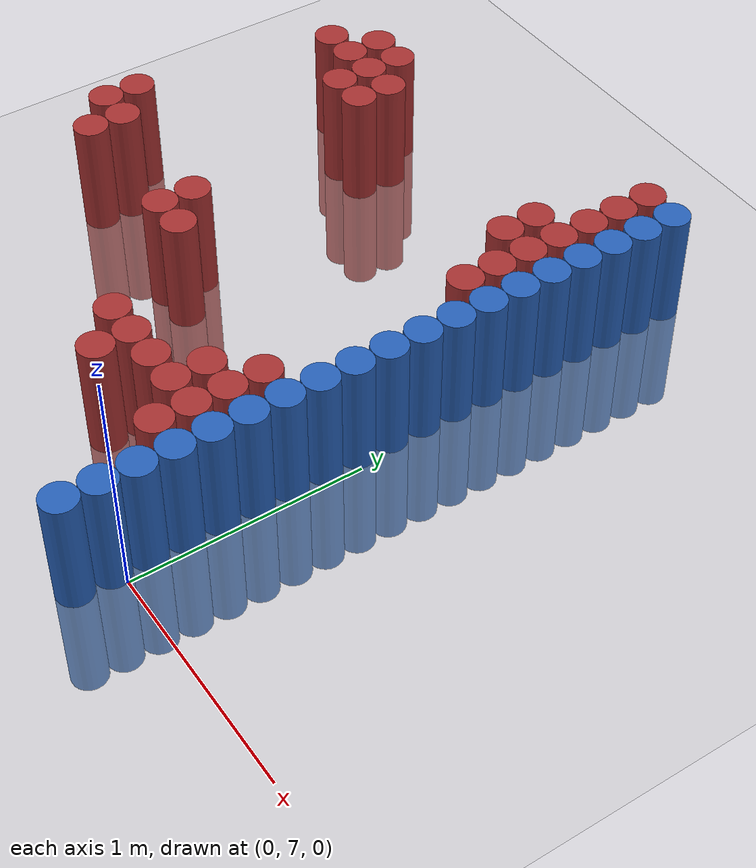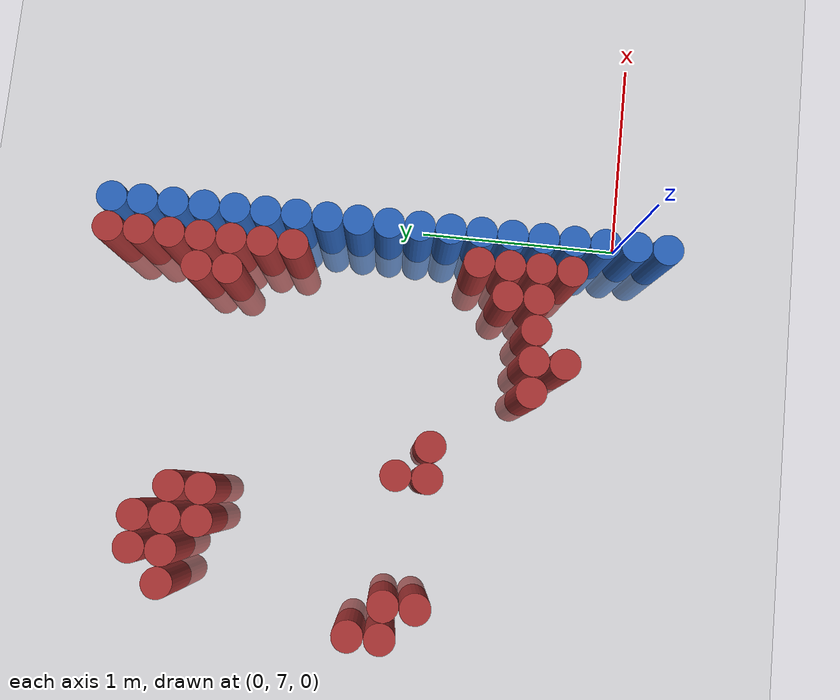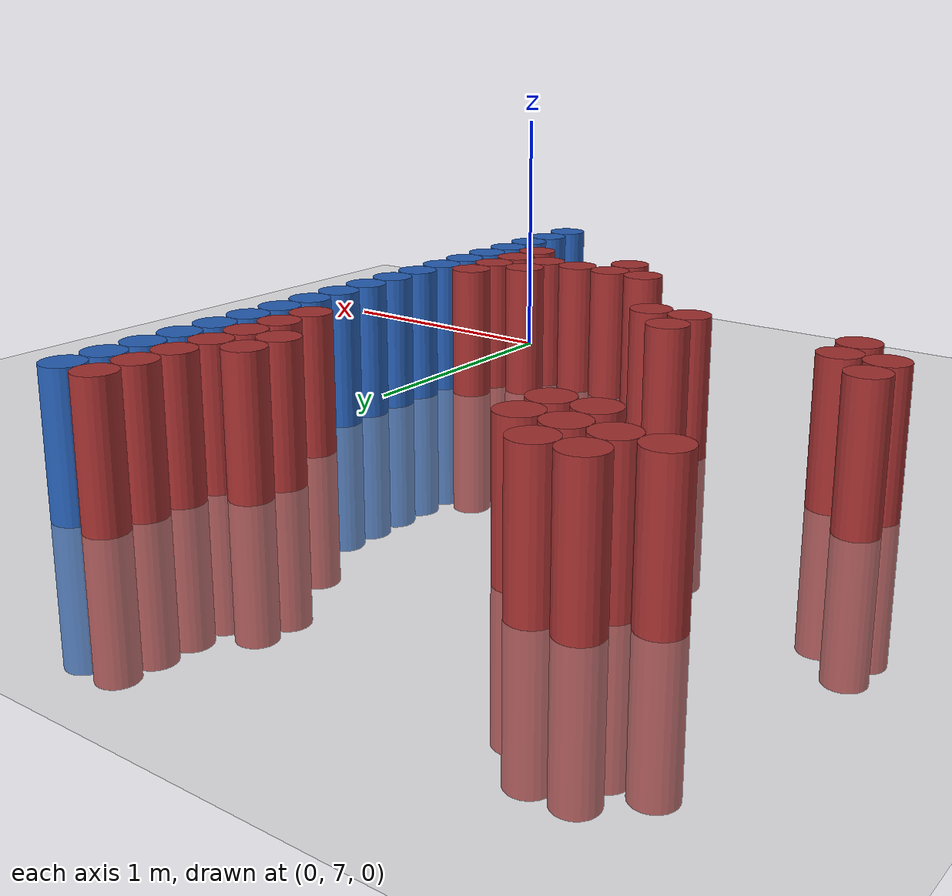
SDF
<sdf version="1.6">
 <world name="default">
  <model name="ground_plane">
   <static>1</static>
   <link name="link">
    <collision name="collision">
     <geometry><plane><normal>0 0 1</normal><size>100 100</size></plane></geometry>
     <surface><friction><ode><mu>100</mu><mu2>50</mu2></ode></friction></surface>
    </collision>
    <visual name="visual">
     <cast_shadows>0</cast_shadows>
     <geometry><plane><normal>0 0 1</normal><size>100 100</size></plane></geometry>
     <material>
      <script><uri>file://media/materials/scripts/gazebo.material</uri><name>Gazebo/Grey</name></script>
     </material>
    </visual>
   </link>
  </model>
  <model name="unit_cylinder_169">
   <static>1</static>
   <pose>-2.025000 8.025000 0.000000 0.000000 0.000000 0.000000</pose>
   <link name="link">
    <inertial>
     <mass>1</mass>
     <inertia><ixx>0.145833</ixx><ixy>0</ixy><ixz>0</ixz><iyy>0.145833</iyy><iyz>0</iyz><izz>0.125</izz></inertia>
    </inertial>
    <collision name="collision">
     <geometry><cylinder><radius>0.075000</radius><length>1</length></cylinder></geometry>
    </collision>
    <visual name="visual">
     <geometry><cylinder><radius>0.075000</radius><length>1</length></cylinder></geometry>
     <material>
      <ambient>0.648000 0.192000 0.192000 1</ambient>
      <diffuse>0.648000 0.192000 0.192000 1</diffuse>
     </material>
     <material>
      <script><name>Gazebo/Grey</name><uri>file://media/materials/scripts/gazebo.material</uri></script>
     </material>
    </visual>
   </link>
  </model>
  <model name="unit_cylinder_170">
   <static>1</static>
   <pose>-2.025000 8.175000 0.000000 0.000000 0.000000 0.000000</pose>
   <link name="link">
    <inertial>
     <mass>1</mass>
     <inertia><ixx>0.145833</ixx><ixy>0</ixy><ixz>0</ixz><iyy>0.145833</iyy><iyz>0</iyz><izz>0.125</izz></inertia>
    </inertial>
    <collision name="collision">
     <geometry><cylinder><radius>0.075000</radius><length>1</length></cylinder></geometry>
    </collision>
    <visual name="visual">
     <geometry><cylinder><radius>0.075000</radius><length>1</length></cylinder></geometry>
     <material>
      <ambient>0.648000 0.192000 0.192000 1</ambient>
      <diffuse>0.648000 0.192000 0.192000 1</diffuse>
     </material>
     <material>
      <script><name>Gazebo/Grey</name><uri>file://media/materials/scripts/gazebo.material</uri></script>
     </material>
    </visual>
   </link>
  </model>
  <model name="unit_cylinder_172">
   <static>1</static>
   <pose>-1.875000 7.875000 0.000000 0.000000 0.000000 0.000000</pose>
   <link name="link">
    <inertial>
     <mass>1</mass>
     <inertia><ixx>0.145833</ixx><ixy>0</ixy><ixz>0</ixz><iyy>0.145833</iyy><iyz>0</iyz><izz>0.125</izz></inertia>
    </inertial>
    <collision name="collision">
     <geometry><cylinder><radius>0.075000</radius><length>1</length></cylinder></geometry>
    </collision>
    <visual name="visual">
     <geometry><cylinder><radius>0.075000</radius><length>1</length></cylinder></geometry>
     <material>
      <ambient>0.648000 0.192000 0.192000 1</ambient>
      <diffuse>0.648000 0.192000 0.192000 1</diffuse>
     </material>
     <material>
      <script><name>Gazebo/Grey</name><uri>file://media/materials/scripts/gazebo.material</uri></script>
     </material>
    </visual>
   </link>
  </model>
  <model name="unit_cylinder_173">
   <static>1</static>
   <pose>-1.875000 8.025000 0.000000 0.000000 0.000000 0.000000</pose>
   <link name="link">
    <inertial>
     <mass>1</mass>
     <inertia><ixx>0.145833</ixx><ixy>0</ixy><ixz>0</ixz><iyy>0.145833</iyy><iyz>0</iyz><izz>0.125</izz></inertia>
    </inertial>
    <collision name="collision">
     <geometry><cylinder><radius>0.075000</radius><length>1</length></cylinder></geometry>
    </collision>
    <visual name="visual">
     <geometry><cylinder><radius>0.075000</radius><length>1</length></cylinder></geometry>
     <material>
      <ambient>0.648000 0.192000 0.192000 1</ambient>
      <diffuse>0.648000 0.192000 0.192000 1</diffuse>
     </material>
     <material>
      <script><name>Gazebo/Grey</name><uri>file://media/materials/scripts/gazebo.material</uri></script>
     </material>
    </visual>
   </link>
  </model>
  <model name="unit_cylinder_174">
   <static>1</static>
   <pose>-1.875000 9.075000 0.000000 0.000000 0.000000 0.000000</pose>
   <link name="link">
    <inertial>
     <mass>1</mass>
     <inertia><ixx>0.145833</ixx><ixy>0</ixy><ixz>0</ixz><iyy>0.145833</iyy><iyz>0</iyz><izz>0.125</izz></inertia>
    </inertial>
    <collision name="collision">
     <geometry><cylinder><radius>0.075000</radius><length>1</length></cylinder></geometry>
    </collision>
    <visual name="visual">
     <geometry><cylinder><radius>0.075000</radius><length>1</length></cylinder></geometry>
     <material>
      <ambient>0.648000 0.192000 0.192000 1</ambient>
      <diffuse>0.648000 0.192000 0.192000 1</diffuse>
     </material>
     <material>
      <script><name>Gazebo/Grey</name><uri>file://media/materials/scripts/gazebo.material</uri></script>
     </material>
    </visual>
   </link>
  </model>
  <model name="unit_cylinder_178">
   <static>1</static>
   <pose>-1.725000 9.075000 0.000000 0.000000 0.000000 0.000000</pose>
   <link name="link">
    <inertial>
     <mass>1</mass>
     <inertia><ixx>0.145833</ixx><ixy>0</ixy><ixz>0</ixz><iyy>0.145833</iyy><iyz>0</iyz><izz>0.125</izz></inertia>
    </inertial>
    <collision name="collision">
     <geometry><cylinder><radius>0.075000</radius><length>1</length></cylinder></geometry>
    </collision>
    <visual name="visual">
     <geometry><cylinder><radius>0.075000</radius><length>1</length></cylinder></geometry>
     <material>
      <ambient>0.648000 0.192000 0.192000 1</ambient>
      <diffuse>0.648000 0.192000 0.192000 1</diffuse>
     </material>
     <material>
      <script><name>Gazebo/Grey</name><uri>file://media/materials/scripts/gazebo.material</uri></script>
     </material>
    </visual>
   </link>
  </model>
  <model name="unit_cylinder_179">
   <static>1</static>
   <pose>-1.725000 9.225000 0.000000 0.000000 0.000000 0.000000</pose>
   <link name="link">
    <inertial>
     <mass>1</mass>
     <inertia><ixx>0.145833</ixx><ixy>0</ixy><ixz>0</ixz><iyy>0.145833</iyy><iyz>0</iyz><izz>0.125</izz></inertia>
    </inertial>
    <collision name="collision">
     <geometry><cylinder><radius>0.075000</radius><length>1</length></cylinder></geometry>
    </collision>
    <visual name="visual">
     <geometry><cylinder><radius>0.075000</radius><length>1</length></cylinder></geometry>
     <material>
      <ambient>0.648000 0.192000 0.192000 1</ambient>
      <diffuse>0.648000 0.192000 0.192000 1</diffuse>
     </material>
     <material>
      <script><name>Gazebo/Grey</name><uri>file://media/materials/scripts/gazebo.material</uri></script>
     </material>
    </visual>
   </link>
  </model>
  <model name="unit_cylinder_184">
   <static>1</static>
   <pose>-1.575000 8.925000 0.000000 0.000000 0.000000 0.000000</pose>
   <link name="link">
    <inertial>
     <mass>1</mass>
     <inertia><ixx>0.145833</ixx><ixy>0</ixy><ixz>0</ixz><iyy>0.145833</iyy><iyz>0</iyz><izz>0.125</izz></inertia>
    </inertial>
    <collision name="collision">
     <geometry><cylinder><radius>0.075000</radius><length>1</length></cylinder></geometry>
    </collision>
    <visual name="visual">
     <geometry><cylinder><radius>0.075000</radius><length>1</length></cylinder></geometry>
     <material>
      <ambient>0.648000 0.192000 0.192000 1</ambient>
      <diffuse>0.648000 0.192000 0.192000 1</diffuse>
     </material>
     <material>
      <script><name>Gazebo/Grey</name><uri>file://media/materials/scripts/gazebo.material</uri></script>
     </material>
    </visual>
   </link>
  </model>
  <model name="unit_cylinder_185">
   <static>1</static>
   <pose>-1.575000 9.075000 0.000000 0.000000 0.000000 0.000000</pose>
   <link name="link">
    <inertial>
     <mass>1</mass>
     <inertia><ixx>0.145833</ixx><ixy>0</ixy><ixz>0</ixz><iyy>0.145833</iyy><iyz>0</iyz><izz>0.125</izz></inertia>
    </inertial>
    <collision name="collision">
     <geometry><cylinder><radius>0.075000</radius><length>1</length></cylinder></geometry>
    </collision>
    <visual name="visual">
     <geometry><cylinder><radius>0.075000</radius><length>1</length></cylinder></geometry>
     <material>
      <ambient>0.648000 0.192000 0.192000 1</ambient>
      <diffuse>0.648000 0.192000 0.192000 1</diffuse>
     </material>
     <material>
      <script><name>Gazebo/Grey</name><uri>file://media/materials/scripts/gazebo.material</uri></script>
     </material>
    </visual>
   </link>
  </model>
  <model name="unit_cylinder_186">
   <static>1</static>
   <pose>-1.575000 9.225000 0.000000 0.000000 0.000000 0.000000</pose>
   <link name="link">
    <inertial>
     <mass>1</mass>
     <inertia><ixx>0.145833</ixx><ixy>0</ixy><ixz>0</ixz><iyy>0.145833</iyy><iyz>0</iyz><izz>0.125</izz></inertia>
    </inertial>
    <collision name="collision">
     <geometry><cylinder><radius>0.075000</radius><length>1</length></cylinder></geometry>
    </collision>
    <visual name="visual">
     <geometry><cylinder><radius>0.075000</radius><length>1</length></cylinder></geometry>
     <material>
      <ambient>0.648000 0.192000 0.192000 1</ambient>
      <diffuse>0.648000 0.192000 0.192000 1</diffuse>
     </material>
     <material>
      <script><name>Gazebo/Grey</name><uri>file://media/materials/scripts/gazebo.material</uri></script>
     </material>
    </visual>
   </link>
  </model>
  <model name="unit_cylinder_190">
   <static>1</static>
   <pose>-1.425000 8.925000 0.000000 0.000000 0.000000 0.000000</pose>
   <link name="link">
    <inertial>
     <mass>1</mass>
     <inertia><ixx>0.145833</ixx><ixy>0</ixy><ixz>0</ixz><iyy>0.145833</iyy><iyz>0</iyz><izz>0.125</izz></inertia>
    </inertial>
    <collision name="collision">
     <geometry><cylinder><radius>0.075000</radius><length>1</length></cylinder></geometry>
    </collision>
    <visual name="visual">
     <geometry><cylinder><radius>0.075000</radius><length>1</length></cylinder></geometry>
     <material>
      <ambient>0.648000 0.192000 0.192000 1</ambient>
      <diffuse>0.648000 0.192000 0.192000 1</diffuse>
     </material>
     <material>
      <script><name>Gazebo/Grey</name><uri>file://media/materials/scripts/gazebo.material</uri></script>
     </material>
    </visual>
   </link>
  </model>
  <model name="unit_cylinder_191">
   <static>1</static>
   <pose>-1.425000 9.075000 0.000000 0.000000 0.000000 0.000000</pose>
   <link name="link">
    <inertial>
     <mass>1</mass>
     <inertia><ixx>0.145833</ixx><ixy>0</ixy><ixz>0</ixz><iyy>0.145833</iyy><iyz>0</iyz><izz>0.125</izz></inertia>
    </inertial>
    <collision name="collision">
     <geometry><cylinder><radius>0.075000</radius><length>1</length></cylinder></geometry>
    </collision>
    <visual name="visual">
     <geometry><cylinder><radius>0.075000</radius><length>1</length></cylinder></geometry>
     <material>
      <ambient>0.648000 0.192000 0.192000 1</ambient>
      <diffuse>0.648000 0.192000 0.192000 1</diffuse>
     </material>
     <material>
      <script><name>Gazebo/Grey</name><uri>file://media/materials/scripts/gazebo.material</uri></script>
     </material>
    </visual>
   </link>
  </model>
  <model name="unit_cylinder_193">
   <static>1</static>
   <pose>-1.275000 7.875000 0.000000 0.000000 0.000000 0.000000</pose>
   <link name="link">
    <inertial>
     <mass>1</mass>
     <inertia><ixx>0.145833</ixx><ixy>0</ixy><ixz>0</ixz><iyy>0.145833</iyy><iyz>0</iyz><izz>0.125</izz></inertia>
    </inertial>
    <collision name="collision">
     <geometry><cylinder><radius>0.075000</radius><length>1</length></cylinder></geometry>
    </collision>
    <visual name="visual">
     <geometry><cylinder><radius>0.075000</radius><length>1</length></cylinder></geometry>
     <material>
      <ambient>0.648000 0.192000 0.192000 1</ambient>
      <diffuse>0.648000 0.192000 0.192000 1</diffuse>
     </material>
     <material>
      <script><name>Gazebo/Grey</name><uri>file://media/materials/scripts/gazebo.material</uri></script>
     </material>
    </visual>
   </link>
  </model>
  <model name="unit_cylinder_194">
   <static>1</static>
   <pose>-1.275000 8.025000 0.000000 0.000000 0.000000 0.000000</pose>
   <link name="link">
    <inertial>
     <mass>1</mass>
     <inertia><ixx>0.145833</ixx><ixy>0</ixy><ixz>0</ixz><iyy>0.145833</iyy><iyz>0</iyz><izz>0.125</izz></inertia>
    </inertial>
    <collision name="collision">
     <geometry><cylinder><radius>0.075000</radius><length>1</length></cylinder></geometry>
    </collision>
    <visual name="visual">
     <geometry><cylinder><radius>0.075000</radius><length>1</length></cylinder></geometry>
     <material>
      <ambient>0.648000 0.192000 0.192000 1</ambient>
      <diffuse>0.648000 0.192000 0.192000 1</diffuse>
     </material>
     <material>
      <script><name>Gazebo/Grey</name><uri>file://media/materials/scripts/gazebo.material</uri></script>
     </material>
    </visual>
   </link>
  </model>
  <model name="unit_cylinder_196">
   <static>1</static>
   <pose>-1.125000 7.875000 0.000000 0.000000 0.000000 0.000000</pose>
   <link name="link">
    <inertial>
     <mass>1</mass>
     <inertia><ixx>0.145833</ixx><ixy>0</ixy><ixz>0</ixz><iyy>0.145833</iyy><iyz>0</iyz><izz>0.125</izz></inertia>
    </inertial>
    <collision name="collision">
     <geometry><cylinder><radius>0.075000</radius><length>1</length></cylinder></geometry>
    </collision>
    <visual name="visual">
     <geometry><cylinder><radius>0.075000</radius><length>1</length></cylinder></geometry>
     <material>
      <ambient>0.648000 0.192000 0.192000 1</ambient>
      <diffuse>0.648000 0.192000 0.192000 1</diffuse>
     </material>
     <material>
      <script><name>Gazebo/Grey</name><uri>file://media/materials/scripts/gazebo.material</uri></script>
     </material>
    </visual>
   </link>
  </model>
  <model name="unit_cylinder_202">
   <static>1</static>
   <pose>-0.825000 7.425000 0.000000 0.000000 0.000000 0.000000</pose>
   <link name="link">
    <inertial>
     <mass>1</mass>
     <inertia><ixx>0.145833</ixx><ixy>0</ixy><ixz>0</ixz><iyy>0.145833</iyy><iyz>0</iyz><izz>0.125</izz></inertia>
    </inertial>
    <collision name="collision">
     <geometry><cylinder><radius>0.075000</radius><length>1</length></cylinder></geometry>
    </collision>
    <visual name="visual">
     <geometry><cylinder><radius>0.075000</radius><length>1</length></cylinder></geometry>
     <material>
      <ambient>0.648000 0.192000 0.192000 1</ambient>
      <diffuse>0.648000 0.192000 0.192000 1</diffuse>
     </material>
     <material>
      <script><name>Gazebo/Grey</name><uri>file://media/materials/scripts/gazebo.material</uri></script>
     </material>
    </visual>
   </link>
  </model>
  <model name="unit_cylinder_203">
   <static>1</static>
   <pose>-0.675000 7.275000 0.000000 0.000000 0.000000 0.000000</pose>
   <link name="link">
    <inertial>
     <mass>1</mass>
     <inertia><ixx>0.145833</ixx><ixy>0</ixy><ixz>0</ixz><iyy>0.145833</iyy><iyz>0</iyz><izz>0.125</izz></inertia>
    </inertial>
    <collision name="collision">
     <geometry><cylinder><radius>0.075000</radius><length>1</length></cylinder></geometry>
    </collision>
    <visual name="visual">
     <geometry><cylinder><radius>0.075000</radius><length>1</length></cylinder></geometry>
     <material>
      <ambient>0.648000 0.192000 0.192000 1</ambient>
      <diffuse>0.648000 0.192000 0.192000 1</diffuse>
     </material>
     <material>
      <script><name>Gazebo/Grey</name><uri>file://media/materials/scripts/gazebo.material</uri></script>
     </material>
    </visual>
   </link>
  </model>
  <model name="unit_cylinder_204">
   <static>1</static>
   <pose>-0.675000 7.425000 0.000000 0.000000 0.000000 0.000000</pose>
   <link name="link">
    <inertial>
     <mass>1</mass>
     <inertia><ixx>0.145833</ixx><ixy>0</ixy><ixz>0</ixz><iyy>0.145833</iyy><iyz>0</iyz><izz>0.125</izz></inertia>
    </inertial>
    <collision name="collision">
     <geometry><cylinder><radius>0.075000</radius><length>1</length></cylinder></geometry>
    </collision>
    <visual name="visual">
     <geometry><cylinder><radius>0.075000</radius><length>1</length></cylinder></geometry>
     <material>
      <ambient>0.648000 0.192000 0.192000 1</ambient>
      <diffuse>0.648000 0.192000 0.192000 1</diffuse>
     </material>
     <material>
      <script><name>Gazebo/Grey</name><uri>file://media/materials/scripts/gazebo.material</uri></script>
     </material>
    </visual>
   </link>
  </model>
  <model name="unit_cylinder_206">
   <static>1</static>
   <pose>-0.525000 7.425000 0.000000 0.000000 0.000000 0.000000</pose>
   <link name="link">
    <inertial>
     <mass>1</mass>
     <inertia><ixx>0.145833</ixx><ixy>0</ixy><ixz>0</ixz><iyy>0.145833</iyy><iyz>0</iyz><izz>0.125</izz></inertia>
    </inertial>
    <collision name="collision">
     <geometry><cylinder><radius>0.075000</radius><length>1</length></cylinder></geometry>
    </collision>
    <visual name="visual">
     <geometry><cylinder><radius>0.075000</radius><length>1</length></cylinder></geometry>
     <material>
      <ambient>0.648000 0.192000 0.192000 1</ambient>
      <diffuse>0.648000 0.192000 0.192000 1</diffuse>
     </material>
     <material>
      <script><name>Gazebo/Grey</name><uri>file://media/materials/scripts/gazebo.material</uri></script>
     </material>
    </visual>
   </link>
  </model>
  <model name="unit_cylinder_209">
   <static>1</static>
   <pose>-0.375000 7.425000 0.000000 0.000000 0.000000 0.000000</pose>
   <link name="link">
    <inertial>
     <mass>1</mass>
     <inertia><ixx>0.145833</ixx><ixy>0</ixy><ixz>0</ixz><iyy>0.145833</iyy><iyz>0</iyz><izz>0.125</izz></inertia>
    </inertial>
    <collision name="collision">
     <geometry><cylinder><radius>0.075000</radius><length>1</length></cylinder></geometry>
    </collision>
    <visual name="visual">
     <geometry><cylinder><radius>0.075000</radius><length>1</length></cylinder></geometry>
     <material>
      <ambient>0.648000 0.192000 0.192000 1</ambient>
      <diffuse>0.648000 0.192000 0.192000 1</diffuse>
     </material>
     <material>
      <script><name>Gazebo/Grey</name><uri>file://media/materials/scripts/gazebo.material</uri></script>
     </material>
    </visual>
   </link>
  </model>
  <model name="unit_cylinder_210">
   <static>1</static>
   <pose>-0.375000 7.575000 0.000000 0.000000 0.000000 0.000000</pose>
   <link name="link">
    <inertial>
     <mass>1</mass>
     <inertia><ixx>0.145833</ixx><ixy>0</ixy><ixz>0</ixz><iyy>0.145833</iyy><iyz>0</iyz><izz>0.125</izz></inertia>
    </inertial>
    <collision name="collision">
     <geometry><cylinder><radius>0.075000</radius><length>1</length></cylinder></geometry>
    </collision>
    <visual name="visual">
     <geometry><cylinder><radius>0.075000</radius><length>1</length></cylinder></geometry>
     <material>
      <ambient>0.648000 0.192000 0.192000 1</ambient>
      <diffuse>0.648000 0.192000 0.192000 1</diffuse>
     </material>
     <material>
      <script><name>Gazebo/Grey</name><uri>file://media/materials/scripts/gazebo.material</uri></script>
     </material>
    </visual>
   </link>
  </model>
  <model name="unit_cylinder_211">
   <static>1</static>
   <pose>-0.375000 8.925000 0.000000 0.000000 0.000000 0.000000</pose>
   <link name="link">
    <inertial>
     <mass>1</mass>
     <inertia><ixx>0.145833</ixx><ixy>0</ixy><ixz>0</ixz><iyy>0.145833</iyy><iyz>0</iyz><izz>0.125</izz></inertia>
    </inertial>
    <collision name="collision">
     <geometry><cylinder><radius>0.075000</radius><length>1</length></cylinder></geometry>
    </collision>
    <visual name="visual">
     <geometry><cylinder><radius>0.075000</radius><length>1</length></cylinder></geometry>
     <material>
      <ambient>0.648000 0.192000 0.192000 1</ambient>
      <diffuse>0.648000 0.192000 0.192000 1</diffuse>
     </material>
     <material>
      <script><name>Gazebo/Grey</name><uri>file://media/materials/scripts/gazebo.material</uri></script>
     </material>
    </visual>
   </link>
  </model>
  <model name="unit_cylinder_212">
   <static>1</static>
   <pose>-0.375000 9.075000 0.000000 0.000000 0.000000 0.000000</pose>
   <link name="link">
    <inertial>
     <mass>1</mass>
     <inertia><ixx>0.145833</ixx><ixy>0</ixy><ixz>0</ixz><iyy>0.145833</iyy><iyz>0</iyz><izz>0.125</izz></inertia>
    </inertial>
    <collision name="collision">
     <geometry><cylinder><radius>0.075000</radius><length>1</length></cylinder></geometry>
    </collision>
    <visual name="visual">
     <geometry><cylinder><radius>0.075000</radius><length>1</length></cylinder></geometry>
     <material>
      <ambient>0.648000 0.192000 0.192000 1</ambient>
      <diffuse>0.648000 0.192000 0.192000 1</diffuse>
     </material>
     <material>
      <script><name>Gazebo/Grey</name><uri>file://media/materials/scripts/gazebo.material</uri></script>
     </material>
    </visual>
   </link>
  </model>
  <model name="unit_cylinder_220">
   <static>1</static>
   <pose>-0.225000 7.275000 0.000000 0.000000 0.000000 0.000000</pose>
   <link name="link">
    <inertial>
     <mass>1</mass>
     <inertia><ixx>0.145833</ixx><ixy>0</ixy><ixz>0</ixz><iyy>0.145833</iyy><iyz>0</iyz><izz>0.125</izz></inertia>
    </inertial>
    <collision name="collision">
     <geometry><cylinder><radius>0.075000</radius><length>1</length></cylinder></geometry>
    </collision>
    <visual name="visual">
     <geometry><cylinder><radius>0.075000</radius><length>1</length></cylinder></geometry>
     <material>
      <ambient>0.648000 0.192000 0.192000 1</ambient>
      <diffuse>0.648000 0.192000 0.192000 1</diffuse>
     </material>
     <material>
      <script><name>Gazebo/Grey</name><uri>file://media/materials/scripts/gazebo.material</uri></script>
     </material>
    </visual>
   </link>
  </model>
  <model name="unit_cylinder_221">
   <static>1</static>
   <pose>-0.225000 7.425000 0.000000 0.000000 0.000000 0.000000</pose>
   <link name="link">
    <inertial>
     <mass>1</mass>
     <inertia><ixx>0.145833</ixx><ixy>0</ixy><ixz>0</ixz><iyy>0.145833</iyy><iyz>0</iyz><izz>0.125</izz></inertia>
    </inertial>
    <collision name="collision">
     <geometry><cylinder><radius>0.075000</radius><length>1</length></cylinder></geometry>
    </collision>
    <visual name="visual">
     <geometry><cylinder><radius>0.075000</radius><length>1</length></cylinder></geometry>
     <material>
      <ambient>0.648000 0.192000 0.192000 1</ambient>
      <diffuse>0.648000 0.192000 0.192000 1</diffuse>
     </material>
     <material>
      <script><name>Gazebo/Grey</name><uri>file://media/materials/scripts/gazebo.material</uri></script>
     </material>
    </visual>
   </link>
  </model>
  <model name="unit_cylinder_222">
   <static>1</static>
   <pose>-0.225000 7.575000 0.000000 0.000000 0.000000 0.000000</pose>
   <link name="link">
    <inertial>
     <mass>1</mass>
     <inertia><ixx>0.145833</ixx><ixy>0</ixy><ixz>0</ixz><iyy>0.145833</iyy><iyz>0</iyz><izz>0.125</izz></inertia>
    </inertial>
    <collision name="collision">
     <geometry><cylinder><radius>0.075000</radius><length>1</length></cylinder></geometry>
    </collision>
    <visual name="visual">
     <geometry><cylinder><radius>0.075000</radius><length>1</length></cylinder></geometry>
     <material>
      <ambient>0.648000 0.192000 0.192000 1</ambient>
      <diffuse>0.648000 0.192000 0.192000 1</diffuse>
     </material>
     <material>
      <script><name>Gazebo/Grey</name><uri>file://media/materials/scripts/gazebo.material</uri></script>
     </material>
    </visual>
   </link>
  </model>
  <model name="unit_cylinder_223">
   <static>1</static>
   <pose>-0.225000 7.725000 0.000000 0.000000 0.000000 0.000000</pose>
   <link name="link">
    <inertial>
     <mass>1</mass>
     <inertia><ixx>0.145833</ixx><ixy>0</ixy><ixz>0</ixz><iyy>0.145833</iyy><iyz>0</iyz><izz>0.125</izz></inertia>
    </inertial>
    <collision name="collision">
     <geometry><cylinder><radius>0.075000</radius><length>1</length></cylinder></geometry>
    </collision>
    <visual name="visual">
     <geometry><cylinder><radius>0.075000</radius><length>1</length></cylinder></geometry>
     <material>
      <ambient>0.648000 0.192000 0.192000 1</ambient>
      <diffuse>0.648000 0.192000 0.192000 1</diffuse>
     </material>
     <material>
      <script><name>Gazebo/Grey</name><uri>file://media/materials/scripts/gazebo.material</uri></script>
     </material>
    </visual>
   </link>
  </model>
  <model name="unit_cylinder_224">
   <static>1</static>
   <pose>-0.225000 8.625000 0.000000 0.000000 0.000000 0.000000</pose>
   <link name="link">
    <inertial>
     <mass>1</mass>
     <inertia><ixx>0.145833</ixx><ixy>0</ixy><ixz>0</ixz><iyy>0.145833</iyy><iyz>0</iyz><izz>0.125</izz></inertia>
    </inertial>
    <collision name="collision">
     <geometry><cylinder><radius>0.075000</radius><length>1</length></cylinder></geometry>
    </collision>
    <visual name="visual">
     <geometry><cylinder><radius>0.075000</radius><length>1</length></cylinder></geometry>
     <material>
      <ambient>0.648000 0.192000 0.192000 1</ambient>
      <diffuse>0.648000 0.192000 0.192000 1</diffuse>
     </material>
     <material>
      <script><name>Gazebo/Grey</name><uri>file://media/materials/scripts/gazebo.material</uri></script>
     </material>
    </visual>
   </link>
  </model>
  <model name="unit_cylinder_225">
   <static>1</static>
   <pose>-0.225000 8.775000 0.000000 0.000000 0.000000 0.000000</pose>
   <link name="link">
    <inertial>
     <mass>1</mass>
     <inertia><ixx>0.145833</ixx><ixy>0</ixy><ixz>0</ixz><iyy>0.145833</iyy><iyz>0</iyz><izz>0.125</izz></inertia>
    </inertial>
    <collision name="collision">
     <geometry><cylinder><radius>0.075000</radius><length>1</length></cylinder></geometry>
    </collision>
    <visual name="visual">
     <geometry><cylinder><radius>0.075000</radius><length>1</length></cylinder></geometry>
     <material>
      <ambient>0.648000 0.192000 0.192000 1</ambient>
      <diffuse>0.648000 0.192000 0.192000 1</diffuse>
     </material>
     <material>
      <script><name>Gazebo/Grey</name><uri>file://media/materials/scripts/gazebo.material</uri></script>
     </material>
    </visual>
   </link>
  </model>
  <model name="unit_cylinder_226">
   <static>1</static>
   <pose>-0.225000 8.925000 0.000000 0.000000 0.000000 0.000000</pose>
   <link name="link">
    <inertial>
     <mass>1</mass>
     <inertia><ixx>0.145833</ixx><ixy>0</ixy><ixz>0</ixz><iyy>0.145833</iyy><iyz>0</iyz><izz>0.125</izz></inertia>
    </inertial>
    <collision name="collision">
     <geometry><cylinder><radius>0.075000</radius><length>1</length></cylinder></geometry>
    </collision>
    <visual name="visual">
     <geometry><cylinder><radius>0.075000</radius><length>1</length></cylinder></geometry>
     <material>
      <ambient>0.648000 0.192000 0.192000 1</ambient>
      <diffuse>0.648000 0.192000 0.192000 1</diffuse>
     </material>
     <material>
      <script><name>Gazebo/Grey</name><uri>file://media/materials/scripts/gazebo.material</uri></script>
     </material>
    </visual>
   </link>
  </model>
  <model name="unit_cylinder_227">
   <static>1</static>
   <pose>-0.225000 9.075000 0.000000 0.000000 0.000000 0.000000</pose>
   <link name="link">
    <inertial>
     <mass>1</mass>
     <inertia><ixx>0.145833</ixx><ixy>0</ixy><ixz>0</ixz><iyy>0.145833</iyy><iyz>0</iyz><izz>0.125</izz></inertia>
    </inertial>
    <collision name="collision">
     <geometry><cylinder><radius>0.075000</radius><length>1</length></cylinder></geometry>
    </collision>
    <visual name="visual">
     <geometry><cylinder><radius>0.075000</radius><length>1</length></cylinder></geometry>
     <material>
      <ambient>0.648000 0.192000 0.192000 1</ambient>
      <diffuse>0.648000 0.192000 0.192000 1</diffuse>
     </material>
     <material>
      <script><name>Gazebo/Grey</name><uri>file://media/materials/scripts/gazebo.material</uri></script>
     </material>
    </visual>
   </link>
  </model>
  <model name="unit_cylinder_228">
   <static>1</static>
   <pose>-0.225000 9.225000 0.000000 0.000000 0.000000 0.000000</pose>
   <link name="link">
    <inertial>
     <mass>1</mass>
     <inertia><ixx>0.145833</ixx><ixy>0</ixy><ixz>0</ixz><iyy>0.145833</iyy><iyz>0</iyz><izz>0.125</izz></inertia>
    </inertial>
    <collision name="collision">
     <geometry><cylinder><radius>0.075000</radius><length>1</length></cylinder></geometry>
    </collision>
    <visual name="visual">
     <geometry><cylinder><radius>0.075000</radius><length>1</length></cylinder></geometry>
     <material>
      <ambient>0.648000 0.192000 0.192000 1</ambient>
      <diffuse>0.648000 0.192000 0.192000 1</diffuse>
     </material>
     <material>
      <script><name>Gazebo/Grey</name><uri>file://media/materials/scripts/gazebo.material</uri></script>
     </material>
    </visual>
   </link>
  </model>
  <model name="unit_cylinder_229">
   <static>1</static>
   <pose>-0.225000 9.375000 0.000000 0.000000 0.000000 0.000000</pose>
   <link name="link">
    <inertial>
     <mass>1</mass>
     <inertia><ixx>0.145833</ixx><ixy>0</ixy><ixz>0</ixz><iyy>0.145833</iyy><iyz>0</iyz><izz>0.125</izz></inertia>
    </inertial>
    <collision name="collision">
     <geometry><cylinder><radius>0.075000</radius><length>1</length></cylinder></geometry>
    </collision>
    <visual name="visual">
     <geometry><cylinder><radius>0.075000</radius><length>1</length></cylinder></geometry>
     <material>
      <ambient>0.648000 0.192000 0.192000 1</ambient>
      <diffuse>0.648000 0.192000 0.192000 1</diffuse>
     </material>
     <material>
      <script><name>Gazebo/Grey</name><uri>file://media/materials/scripts/gazebo.material</uri></script>
     </material>
    </visual>
   </link>
  </model>
  <model name="unit_cylinder_230">
   <static>1</static>
   <pose>-0.225000 9.525000 0.000000 0.000000 0.000000 0.000000</pose>
   <link name="link">
    <inertial>
     <mass>1</mass>
     <inertia><ixx>0.145833</ixx><ixy>0</ixy><ixz>0</ixz><iyy>0.145833</iyy><iyz>0</iyz><izz>0.125</izz></inertia>
    </inertial>
    <collision name="collision">
     <geometry><cylinder><radius>0.075000</radius><length>1</length></cylinder></geometry>
    </collision>
    <visual name="visual">
     <geometry><cylinder><radius>0.075000</radius><length>1</length></cylinder></geometry>
     <material>
      <ambient>0.648000 0.192000 0.192000 1</ambient>
      <diffuse>0.648000 0.192000 0.192000 1</diffuse>
     </material>
     <material>
      <script><name>Gazebo/Grey</name><uri>file://media/materials/scripts/gazebo.material</uri></script>
     </material>
    </visual>
   </link>
  </model>
  <model name="unit_cylinder_242">
   <static>1</static>
   <pose>-0.075000 6.825000 0.000000 0.000000 0.000000 0.000000</pose>
   <link name="link">
    <inertial>
     <mass>1</mass>
     <inertia><ixx>0.145833</ixx><ixy>0</ixy><ixz>0</ixz><iyy>0.145833</iyy><iyz>0</iyz><izz>0.125</izz></inertia>
    </inertial>
    <collision name="collision">
     <geometry><cylinder><radius>0.075000</radius><length>1</length></cylinder></geometry>
    </collision>
    <visual name="visual">
     <geometry><cylinder><radius>0.075000</radius><length>1</length></cylinder></geometry>
     <material>
      <ambient>0.152000 0.379000 0.720000 1</ambient>
      <diffuse>0.152000 0.379000 0.720000 1</diffuse>
     </material>
     <material>
      <script><name>Gazebo/Grey</name><uri>file://media/materials/scripts/gazebo.material</uri></script>
     </material>
    </visual>
   </link>
  </model>
  <model name="unit_cylinder_243">
   <static>1</static>
   <pose>-0.075000 6.975000 0.000000 0.000000 0.000000 0.000000</pose>
   <link name="link">
    <inertial>
     <mass>1</mass>
     <inertia><ixx>0.145833</ixx><ixy>0</ixy><ixz>0</ixz><iyy>0.145833</iyy><iyz>0</iyz><izz>0.125</izz></inertia>
    </inertial>
    <collision name="collision">
     <geometry><cylinder><radius>0.075000</radius><length>1</length></cylinder></geometry>
    </collision>
    <visual name="visual">
     <geometry><cylinder><radius>0.075000</radius><length>1</length></cylinder></geometry>
     <material>
      <ambient>0.152000 0.379000 0.720000 1</ambient>
      <diffuse>0.152000 0.379000 0.720000 1</diffuse>
     </material>
     <material>
      <script><name>Gazebo/Grey</name><uri>file://media/materials/scripts/gazebo.material</uri></script>
     </material>
    </visual>
   </link>
  </model>
  <model name="unit_cylinder_244">
   <static>1</static>
   <pose>-0.075000 7.125000 0.000000 0.000000 0.000000 0.000000</pose>
   <link name="link">
    <inertial>
     <mass>1</mass>
     <inertia><ixx>0.145833</ixx><ixy>0</ixy><ixz>0</ixz><iyy>0.145833</iyy><iyz>0</iyz><izz>0.125</izz></inertia>
    </inertial>
    <collision name="collision">
     <geometry><cylinder><radius>0.075000</radius><length>1</length></cylinder></geometry>
    </collision>
    <visual name="visual">
     <geometry><cylinder><radius>0.075000</radius><length>1</length></cylinder></geometry>
     <material>
      <ambient>0.152000 0.379000 0.720000 1</ambient>
      <diffuse>0.152000 0.379000 0.720000 1</diffuse>
     </material>
     <material>
      <script><name>Gazebo/Grey</name><uri>file://media/materials/scripts/gazebo.material</uri></script>
     </material>
    </visual>
   </link>
  </model>
  <model name="unit_cylinder_245">
   <static>1</static>
   <pose>-0.075000 7.275000 0.000000 0.000000 0.000000 0.000000</pose>
   <link name="link">
    <inertial>
     <mass>1</mass>
     <inertia><ixx>0.145833</ixx><ixy>0</ixy><ixz>0</ixz><iyy>0.145833</iyy><iyz>0</iyz><izz>0.125</izz></inertia>
    </inertial>
    <collision name="collision">
     <geometry><cylinder><radius>0.075000</radius><length>1</length></cylinder></geometry>
    </collision>
    <visual name="visual">
     <geometry><cylinder><radius>0.075000</radius><length>1</length></cylinder></geometry>
     <material>
      <ambient>0.152000 0.379000 0.720000 1</ambient>
      <diffuse>0.152000 0.379000 0.720000 1</diffuse>
     </material>
     <material>
      <script><name>Gazebo/Grey</name><uri>file://media/materials/scripts/gazebo.material</uri></script>
     </material>
    </visual>
   </link>
  </model>
  <model name="unit_cylinder_246">
   <static>1</static>
   <pose>-0.075000 7.425000 0.000000 0.000000 0.000000 0.000000</pose>
   <link name="link">
    <inertial>
     <mass>1</mass>
     <inertia><ixx>0.145833</ixx><ixy>0</ixy><ixz>0</ixz><iyy>0.145833</iyy><iyz>0</iyz><izz>0.125</izz></inertia>
    </inertial>
    <collision name="collision">
     <geometry><cylinder><radius>0.075000</radius><length>1</length></cylinder></geometry>
    </collision>
    <visual name="visual">
     <geometry><cylinder><radius>0.075000</radius><length>1</length></cylinder></geometry>
     <material>
      <ambient>0.152000 0.379000 0.720000 1</ambient>
      <diffuse>0.152000 0.379000 0.720000 1</diffuse>
     </material>
     <material>
      <script><name>Gazebo/Grey</name><uri>file://media/materials/scripts/gazebo.material</uri></script>
     </material>
    </visual>
   </link>
  </model>
  <model name="unit_cylinder_247">
   <static>1</static>
   <pose>-0.075000 7.575000 0.000000 0.000000 0.000000 0.000000</pose>
   <link name="link">
    <inertial>
     <mass>1</mass>
     <inertia><ixx>0.145833</ixx><ixy>0</ixy><ixz>0</ixz><iyy>0.145833</iyy><iyz>0</iyz><izz>0.125</izz></inertia>
    </inertial>
    <collision name="collision">
     <geometry><cylinder><radius>0.075000</radius><length>1</length></cylinder></geometry>
    </collision>
    <visual name="visual">
     <geometry><cylinder><radius>0.075000</radius><length>1</length></cylinder></geometry>
     <material>
      <ambient>0.152000 0.379000 0.720000 1</ambient>
      <diffuse>0.152000 0.379000 0.720000 1</diffuse>
     </material>
     <material>
      <script><name>Gazebo/Grey</name><uri>file://media/materials/scripts/gazebo.material</uri></script>
     </material>
    </visual>
   </link>
  </model>
  <model name="unit_cylinder_248">
   <static>1</static>
   <pose>-0.075000 7.725000 0.000000 0.000000 0.000000 0.000000</pose>
   <link name="link">
    <inertial>
     <mass>1</mass>
     <inertia><ixx>0.145833</ixx><ixy>0</ixy><ixz>0</ixz><iyy>0.145833</iyy><iyz>0</iyz><izz>0.125</izz></inertia>
    </inertial>
    <collision name="collision">
     <geometry><cylinder><radius>0.075000</radius><length>1</length></cylinder></geometry>
    </collision>
    <visual name="visual">
     <geometry><cylinder><radius>0.075000</radius><length>1</length></cylinder></geometry>
     <material>
      <ambient>0.152000 0.379000 0.720000 1</ambient>
      <diffuse>0.152000 0.379000 0.720000 1</diffuse>
     </material>
     <material>
      <script><name>Gazebo/Grey</name><uri>file://media/materials/scripts/gazebo.material</uri></script>
     </material>
    </visual>
   </link>
  </model>
  <model name="unit_cylinder_249">
   <static>1</static>
   <pose>-0.075000 7.875000 0.000000 0.000000 0.000000 0.000000</pose>
   <link name="link">
    <inertial>
     <mass>1</mass>
     <inertia><ixx>0.145833</ixx><ixy>0</ixy><ixz>0</ixz><iyy>0.145833</iyy><iyz>0</iyz><izz>0.125</izz></inertia>
    </inertial>
    <collision name="collision">
     <geometry><cylinder><radius>0.075000</radius><length>1</length></cylinder></geometry>
    </collision>
    <visual name="visual">
     <geometry><cylinder><radius>0.075000</radius><length>1</length></cylinder></geometry>
     <material>
      <ambient>0.152000 0.379000 0.720000 1</ambient>
      <diffuse>0.152000 0.379000 0.720000 1</diffuse>
     </material>
     <material>
      <script><name>Gazebo/Grey</name><uri>file://media/materials/scripts/gazebo.material</uri></script>
     </material>
    </visual>
   </link>
  </model>
  <model name="unit_cylinder_250">
   <static>1</static>
   <pose>-0.075000 8.025000 0.000000 0.000000 0.000000 0.000000</pose>
   <link name="link">
    <inertial>
     <mass>1</mass>
     <inertia><ixx>0.145833</ixx><ixy>0</ixy><ixz>0</ixz><iyy>0.145833</iyy><iyz>0</iyz><izz>0.125</izz></inertia>
    </inertial>
    <collision name="collision">
     <geometry><cylinder><radius>0.075000</radius><length>1</length></cylinder></geometry>
    </collision>
    <visual name="visual">
     <geometry><cylinder><radius>0.075000</radius><length>1</length></cylinder></geometry>
     <material>
      <ambient>0.152000 0.379000 0.720000 1</ambient>
      <diffuse>0.152000 0.379000 0.720000 1</diffuse>
     </material>
     <material>
      <script><name>Gazebo/Grey</name><uri>file://media/materials/scripts/gazebo.material</uri></script>
     </material>
    </visual>
   </link>
  </model>
  <model name="unit_cylinder_251">
   <static>1</static>
   <pose>-0.075000 8.175000 0.000000 0.000000 0.000000 0.000000</pose>
   <link name="link">
    <inertial>
     <mass>1</mass>
     <inertia><ixx>0.145833</ixx><ixy>0</ixy><ixz>0</ixz><iyy>0.145833</iyy><iyz>0</iyz><izz>0.125</izz></inertia>
    </inertial>
    <collision name="collision">
     <geometry><cylinder><radius>0.075000</radius><length>1</length></cylinder></geometry>
    </collision>
    <visual name="visual">
     <geometry><cylinder><radius>0.075000</radius><length>1</length></cylinder></geometry>
     <material>
      <ambient>0.152000 0.379000 0.720000 1</ambient>
      <diffuse>0.152000 0.379000 0.720000 1</diffuse>
     </material>
     <material>
      <script><name>Gazebo/Grey</name><uri>file://media/materials/scripts/gazebo.material</uri></script>
     </material>
    </visual>
   </link>
  </model>
  <model name="unit_cylinder_252">
   <static>1</static>
   <pose>-0.075000 8.325000 0.000000 0.000000 0.000000 0.000000</pose>
   <link name="link">
    <inertial>
     <mass>1</mass>
     <inertia><ixx>0.145833</ixx><ixy>0</ixy><ixz>0</ixz><iyy>0.145833</iyy><iyz>0</iyz><izz>0.125</izz></inertia>
    </inertial>
    <collision name="collision">
     <geometry><cylinder><radius>0.075000</radius><length>1</length></cylinder></geometry>
    </collision>
    <visual name="visual">
     <geometry><cylinder><radius>0.075000</radius><length>1</length></cylinder></geometry>
     <material>
      <ambient>0.152000 0.379000 0.720000 1</ambient>
      <diffuse>0.152000 0.379000 0.720000 1</diffuse>
     </material>
     <material>
      <script><name>Gazebo/Grey</name><uri>file://media/materials/scripts/gazebo.material</uri></script>
     </material>
    </visual>
   </link>
  </model>
  <model name="unit_cylinder_253">
   <static>1</static>
   <pose>-0.075000 8.475000 0.000000 0.000000 0.000000 0.000000</pose>
   <link name="link">
    <inertial>
     <mass>1</mass>
     <inertia><ixx>0.145833</ixx><ixy>0</ixy><ixz>0</ixz><iyy>0.145833</iyy><iyz>0</iyz><izz>0.125</izz></inertia>
    </inertial>
    <collision name="collision">
     <geometry><cylinder><radius>0.075000</radius><length>1</length></cylinder></geometry>
    </collision>
    <visual name="visual">
     <geometry><cylinder><radius>0.075000</radius><length>1</length></cylinder></geometry>
     <material>
      <ambient>0.152000 0.379000 0.720000 1</ambient>
      <diffuse>0.152000 0.379000 0.720000 1</diffuse>
     </material>
     <material>
      <script><name>Gazebo/Grey</name><uri>file://media/materials/scripts/gazebo.material</uri></script>
     </material>
    </visual>
   </link>
  </model>
  <model name="unit_cylinder_254">
   <static>1</static>
   <pose>-0.075000 8.625000 0.000000 0.000000 0.000000 0.000000</pose>
   <link name="link">
    <inertial>
     <mass>1</mass>
     <inertia><ixx>0.145833</ixx><ixy>0</ixy><ixz>0</ixz><iyy>0.145833</iyy><iyz>0</iyz><izz>0.125</izz></inertia>
    </inertial>
    <collision name="collision">
     <geometry><cylinder><radius>0.075000</radius><length>1</length></cylinder></geometry>
    </collision>
    <visual name="visual">
     <geometry><cylinder><radius>0.075000</radius><length>1</length></cylinder></geometry>
     <material>
      <ambient>0.152000 0.379000 0.720000 1</ambient>
      <diffuse>0.152000 0.379000 0.720000 1</diffuse>
     </material>
     <material>
      <script><name>Gazebo/Grey</name><uri>file://media/materials/scripts/gazebo.material</uri></script>
     </material>
    </visual>
   </link>
  </model>
  <model name="unit_cylinder_255">
   <static>1</static>
   <pose>-0.075000 8.775000 0.000000 0.000000 0.000000 0.000000</pose>
   <link name="link">
    <inertial>
     <mass>1</mass>
     <inertia><ixx>0.145833</ixx><ixy>0</ixy><ixz>0</ixz><iyy>0.145833</iyy><iyz>0</iyz><izz>0.125</izz></inertia>
    </inertial>
    <collision name="collision">
     <geometry><cylinder><radius>0.075000</radius><length>1</length></cylinder></geometry>
    </collision>
    <visual name="visual">
     <geometry><cylinder><radius>0.075000</radius><length>1</length></cylinder></geometry>
     <material>
      <ambient>0.152000 0.379000 0.720000 1</ambient>
      <diffuse>0.152000 0.379000 0.720000 1</diffuse>
     </material>
     <material>
      <script><name>Gazebo/Grey</name><uri>file://media/materials/scripts/gazebo.material</uri></script>
     </material>
    </visual>
   </link>
  </model>
  <model name="unit_cylinder_256">
   <static>1</static>
   <pose>-0.075000 8.925000 0.000000 0.000000 0.000000 0.000000</pose>
   <link name="link">
    <inertial>
     <mass>1</mass>
     <inertia><ixx>0.145833</ixx><ixy>0</ixy><ixz>0</ixz><iyy>0.145833</iyy><iyz>0</iyz><izz>0.125</izz></inertia>
    </inertial>
    <collision name="collision">
     <geometry><cylinder><radius>0.075000</radius><length>1</length></cylinder></geometry>
    </collision>
    <visual name="visual">
     <geometry><cylinder><radius>0.075000</radius><length>1</length></cylinder></geometry>
     <material>
      <ambient>0.152000 0.379000 0.720000 1</ambient>
      <diffuse>0.152000 0.379000 0.720000 1</diffuse>
     </material>
     <material>
      <script><name>Gazebo/Grey</name><uri>file://media/materials/scripts/gazebo.material</uri></script>
     </material>
    </visual>
   </link>
  </model>
  <model name="unit_cylinder_257">
   <static>1</static>
   <pose>-0.075000 9.075000 0.000000 0.000000 0.000000 0.000000</pose>
   <link name="link">
    <inertial>
     <mass>1</mass>
     <inertia><ixx>0.145833</ixx><ixy>0</ixy><ixz>0</ixz><iyy>0.145833</iyy><iyz>0</iyz><izz>0.125</izz></inertia>
    </inertial>
    <collision name="collision">
     <geometry><cylinder><radius>0.075000</radius><length>1</length></cylinder></geometry>
    </collision>
    <visual name="visual">
     <geometry><cylinder><radius>0.075000</radius><length>1</length></cylinder></geometry>
     <material>
      <ambient>0.152000 0.379000 0.720000 1</ambient>
      <diffuse>0.152000 0.379000 0.720000 1</diffuse>
     </material>
     <material>
      <script><name>Gazebo/Grey</name><uri>file://media/materials/scripts/gazebo.material</uri></script>
     </material>
    </visual>
   </link>
  </model>
  <model name="unit_cylinder_258">
   <static>1</static>
   <pose>-0.075000 9.225000 0.000000 0.000000 0.000000 0.000000</pose>
   <link name="link">
    <inertial>
     <mass>1</mass>
     <inertia><ixx>0.145833</ixx><ixy>0</ixy><ixz>0</ixz><iyy>0.145833</iyy><iyz>0</iyz><izz>0.125</izz></inertia>
    </inertial>
    <collision name="collision">
     <geometry><cylinder><radius>0.075000</radius><length>1</length></cylinder></geometry>
    </collision>
    <visual name="visual">
     <geometry><cylinder><radius>0.075000</radius><length>1</length></cylinder></geometry>
     <material>
      <ambient>0.152000 0.379000 0.720000 1</ambient>
      <diffuse>0.152000 0.379000 0.720000 1</diffuse>
     </material>
     <material>
      <script><name>Gazebo/Grey</name><uri>file://media/materials/scripts/gazebo.material</uri></script>
     </material>
    </visual>
   </link>
  </model>
  <model name="unit_cylinder_259">
   <static>1</static>
   <pose>-0.075000 9.375000 0.000000 0.000000 0.000000 0.000000</pose>
   <link name="link">
    <inertial>
     <mass>1</mass>
     <inertia><ixx>0.145833</ixx><ixy>0</ixy><ixz>0</ixz><iyy>0.145833</iyy><iyz>0</iyz><izz>0.125</izz></inertia>
    </inertial>
    <collision name="collision">
     <geometry><cylinder><radius>0.075000</radius><length>1</length></cylinder></geometry>
    </collision>
    <visual name="visual">
     <geometry><cylinder><radius>0.075000</radius><length>1</length></cylinder></geometry>
     <material>
      <ambient>0.152000 0.379000 0.720000 1</ambient>
      <diffuse>0.152000 0.379000 0.720000 1</diffuse>
     </material>
     <material>
      <script><name>Gazebo/Grey</name><uri>file://media/materials/scripts/gazebo.material</uri></script>
     </material>
    </visual>
   </link>
  </model>
  <model name="unit_cylinder_260">
   <static>1</static>
   <pose>-0.075000 9.525000 0.000000 0.000000 0.000000 0.000000</pose>
   <link name="link">
    <inertial>
     <mass>1</mass>
     <inertia><ixx>0.145833</ixx><ixy>0</ixy><ixz>0</ixz><iyy>0.145833</iyy><iyz>0</iyz><izz>0.125</izz></inertia>
    </inertial>
    <collision name="collision">
     <geometry><cylinder><radius>0.075000</radius><length>1</length></cylinder></geometry>
    </collision>
    <visual name="visual">
     <geometry><cylinder><radius>0.075000</radius><length>1</length></cylinder></geometry>
     <material>
      <ambient>0.152000 0.379000 0.720000 1</ambient>
      <diffuse>0.152000 0.379000 0.720000 1</diffuse>
     </material>
     <material>
      <script><name>Gazebo/Grey</name><uri>file://media/materials/scripts/gazebo.material</uri></script>
     </material>
    </visual>
   </link>
  </model>
 </world>
</sdf>
